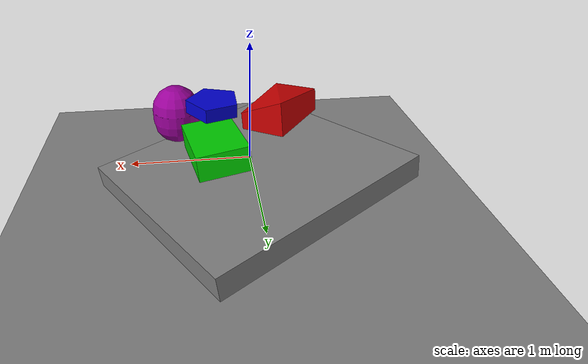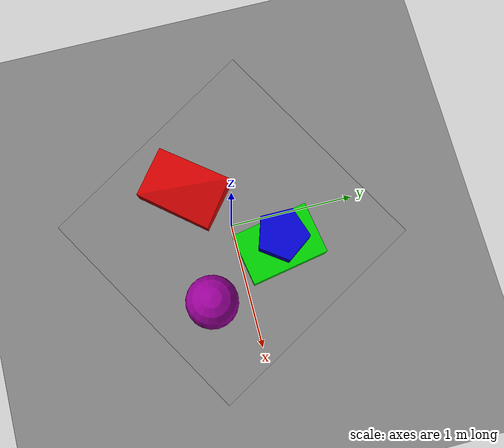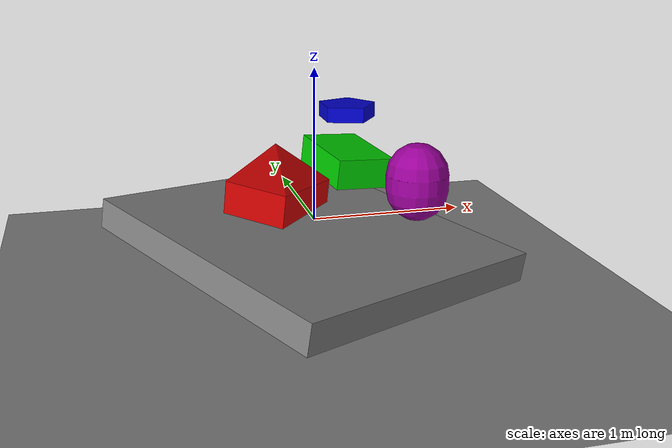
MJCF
<mujoco>
  <option timestep="0.001" jacobian="dense"/>
  <default>
    <geom solref=".006 1"/>
  </default>
  <asset>
    <mesh name="box" vertex="-1 -1 -1 1 -1 -1 1 1 -1 1 1 1 1 -1 1 -1 1 -1 -1 1 1 -1 -1 1" scale="1 1 .1"/>
    <mesh name="boxoid" vertex="-1 -1 -1 1 -1 -1 1 1 -1 1 1 1 1 -1 1 -1 1 -1 -1 1 .5 -1 -1 2" scale=".3 .2 .1"/>
    <mesh name="pentaprism" vertex="1 0 0 0.309 0.951 0 -0.809 0.588 0 -0.809 -0.588 0 0.309 -0.951 0 1 0 1 0.309 0.951 1 -0.809 0.588 1 -0.809 -0.588 1 0.309 -0.951 1" scale=".2 .2 .1"/>
  </asset>
  <worldbody>
    <camera name="camera-1" pos="1.479 -2.383 1.883" xyaxes="0.849 0.529 -0.000 -0.301 0.483 0.822"/>
    <camera name="camera-2" pos="0 0 4" xyaxes="1 0 0 0 1 0"/>
    <camera name="camera-3" pos="-8.298 7.220 7.448" xyaxes="-0.656 -0.754 0.000 0.429 -0.373 0.823"/>
    <geom type="plane" pos="0 0 -.5" size="3 3 .01"/>
    <geom type="mesh" mesh="box" pos="0 0 -.15" euler="3 7 30"/>
    <body pos="-.3 -.3 .3">
      <freejoint/>
      <geom type="mesh" mesh="boxoid" rgba=".8 0 0 1" euler="3 5 -130"/>
    </body>
    <body pos=".3 .3 0.3">
      <freejoint/>
      <geom type="box" euler="3 5 -80" size=".3 .2 .1" rgba="0 .8 0 1"/>
    </body>
    <body pos=".3 .3 .6">
      <freejoint/>
      <geom type="mesh" mesh="pentaprism" rgba="0 0 .8 1"/>
    </body>
    <body pos=".6 -.3 .3">
      <joint name="joint" axis="1 0 0" type="hinge" range="-45 45"/>
      <geom type="capsule" size=".2 .05" rgba=".6 0 .6 1"/>
    </body>
  </worldbody>
  <actuator>
    <motor joint="joint"/>
  </actuator>
</mujoco>
